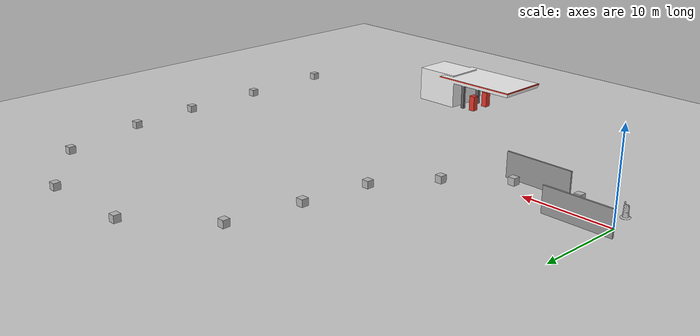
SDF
<sdf version="1.6">
 <world name="default">
  <light name="sun" type="directional">
   <pose>0 0 10 0 -0 0</pose>
   <diffuse>0.8 0.8 0.8 1</diffuse>
   <specular>0.1 0.1 0.1 1</specular>
   <attenuation>
    <range>1000</range>
    <constant>0.9</constant>
    <linear>0.01</linear>
    <quadratic>0.001</quadratic>
   </attenuation>
   <direction>-0.5 0.5 -1</direction>
  </light>
  <model name="ground_plane">
   <static>1</static>
   <link name="link">
    <collision name="collision">
     <geometry><plane><normal>0 0 1</normal><size>100 100</size></plane></geometry>
     <surface><friction><ode><mu>100</mu><mu2>50</mu2></ode></friction></surface>
    </collision>
    <visual name="visual">
     <cast_shadows>0</cast_shadows>
     <geometry><plane><normal>0 0 1</normal><size>100 100</size></plane></geometry>
     <material>
      <script><uri>file://media/materials/scripts/gazebo.material</uri><name>Gazebo/Grey</name></script>
     </material>
    </visual>
   </link>
  </model>
  <gravity>0 0 -9.8</gravity>
  <magnetic_field>6e-06 2.3e-05 -4.2e-05</magnetic_field>
  <atmosphere type="adiabatic"/>
  <physics name="default_physics" default="0" type="ode">
   <max_step_size>0.001</max_step_size>
   <real_time_factor>1</real_time_factor>
   <real_time_update_rate>1000</real_time_update_rate>
  </physics>
  <scene><ambient>0.4 0.4 0.4 1</ambient><background>0.7 0.7 0.7 1</background><shadows>1</shadows></scene>
  <spherical_coordinates>
   <surface_model>EARTH_WGS84</surface_model>
   <latitude_deg>0</latitude_deg>
   <longitude_deg>0</longitude_deg>
   <elevation>0</elevation>
   <heading_deg>0</heading_deg>
  </spherical_coordinates>
  <model name="Gas Station_0">
   <static>1</static>
   <link name="link">
    <collision name="collision">
     <geometry><mesh><uri>model://gas_station/meshes/gas_station.dae</uri><scale>1 1 1</scale></mesh></geometry>
    </collision>
    <visual name="visual">
     <geometry><mesh><uri>model://gas_station/meshes/gas_station.dae</uri><scale>1 1 1</scale></mesh></geometry>
     <material>
      <script>
       <uri>model://gas_station/materials/scripts</uri>
       <uri>model://gas_station/materials/textures</uri>
       <name>GasStation/Diffuse</name>
      </script>
      <shader type="normal_map_object_space"><normal_map>GasStation_Normal.png</normal_map></shader>
     </material>
    </visual>
   </link>
   <pose>31.5134 -18.4442 0 0 0 -3.12862</pose>
  </model>
  <model name="number1_1">
   <pose>5.70487 -3.11577 0.4 0 -0 0</pose>
   <static>1</static>
   <link name="link">
    <visual name="visual">
     <geometry><mesh><uri>model://number1/meshes/number.dae</uri><scale>1 1 1</scale></mesh></geometry>
     <material>
      <script>
       <uri>model://number1/materials/scripts</uri>
       <uri>model://number1/materials/textures</uri>
       <name>Number/One</name>
      </script>
     </material>
    </visual>
   </link>
  </model>
  <model name="number2_1">
   <pose>12.4569 -1.83771 0.4 0 -0 0</pose>
   <static>1</static>
   <link name="link">
    <visual name="visual">
     <geometry><mesh><uri>model://number1/meshes/number.dae</uri><scale>1 1 1</scale></mesh></geometry>
     <material>
      <script>
       <uri>model://number2/materials/scripts</uri>
       <uri>model://number2/materials/textures</uri>
       <name>Number/Two</name>
      </script>
     </material>
    </visual>
   </link>
  </model>
  <model name="number3_1">
   <pose>17.6742 3.03142 0.4 0 -0 0</pose>
   <static>1</static>
   <link name="link">
    <visual name="visual">
     <geometry><mesh><uri>model://number1/meshes/number.dae</uri><scale>1 1 1</scale></mesh></geometry>
     <material>
      <script>
       <uri>model://number3/materials/scripts</uri>
       <uri>model://number3/materials/textures</uri>
       <name>Number/Three</name>
      </script>
     </material>
    </visual>
   </link>
  </model>
  <model name="number4_1">
   <pose>21.6656 9.26273 0.4 0 -0 0</pose>
   <static>1</static>
   <link name="link">
    <visual name="visual">
     <geometry><mesh><uri>model://number1/meshes/number.dae</uri><scale>1 1 1</scale></mesh></geometry>
     <material>
      <script>
       <uri>model://number4/materials/scripts</uri>
       <uri>model://number4/materials/textures</uri>
       <name>Number/Four</name>
      </script>
     </material>
    </visual>
   </link>
  </model>
  <model name="number5_0">
   <pose>22.5855 16.9552 0.4 0 -0 0</pose>
   <static>1</static>
   <link name="link">
    <visual name="visual">
     <geometry><mesh><uri>model://number1/meshes/number.dae</uri><scale>1 1 1</scale></mesh></geometry>
     <material>
      <script>
       <uri>model://number5/materials/scripts</uri>
       <uri>model://number5/materials/textures</uri>
       <name>Number/Five</name>
      </script>
     </material>
    </visual>
   </link>
  </model>
  <model name="number6_0">
   <pose>23.8133 25.1674 0.4 0 -0 0</pose>
   <static>1</static>
   <link name="link">
    <visual name="visual">
     <geometry><mesh><uri>model://number1/meshes/number.dae</uri><scale>1 1 1</scale></mesh></geometry>
     <material>
      <script>
       <uri>model://number6/materials/scripts</uri>
       <uri>model://number6/materials/textures</uri>
       <name>Number/Six</name>
      </script>
     </material>
    </visual>
   </link>
  </model>
  <model name="number7_0">
   <pose>31.2881 31.79 0.4 0 -0 0</pose>
   <static>1</static>
   <link name="link">
    <visual name="visual">
     <geometry><mesh><uri>model://number1/meshes/number.dae</uri><scale>1 1 1</scale></mesh></geometry>
     <material>
      <script>
       <uri>model://number7/materials/scripts</uri>
       <uri>model://number7/materials/textures</uri>
       <name>Number/Seven</name>
      </script>
     </material>
    </visual>
   </link>
  </model>
  <model name="number8_0">
   <pose>41.7861 32.1611 0.4 0 -0 0</pose>
   <static>1</static>
   <link name="link">
    <visual name="visual">
     <geometry><mesh><uri>model://number1/meshes/number.dae</uri><scale>1 1 1</scale></mesh></geometry>
     <material>
      <script>
       <uri>model://number8/materials/scripts</uri>
       <uri>model://number8/materials/textures</uri>
       <name>Number/Eight</name>
      </script>
     </material>
    </visual>
   </link>
  </model>
  <model name="number9_0">
   <pose>49.8993 26.0779 0.4 0 -0 0</pose>
   <static>1</static>
   <link name="link">
    <visual name="visual">
     <geometry><mesh><uri>model://number1/meshes/number.dae</uri><scale>1 1 1</scale></mesh></geometry>
     <material>
      <script>
       <uri>model://number9/materials/scripts</uri>
       <uri>model://number9/materials/textures</uri>
       <name>Number/Nine</name>
      </script>
     </material>
    </visual>
   </link>
  </model>
  <model name="number1_2">
   <pose>52.2645 16.3203 0.4 0 -0 0</pose>
   <static>1</static>
   <link name="link">
    <visual name="visual">
     <geometry><mesh><uri>model://number1/meshes/number.dae</uri><scale>1 1 1</scale></mesh></geometry>
     <material>
      <script>
       <uri>model://number1/materials/scripts</uri>
       <uri>model://number1/materials/textures</uri>
       <name>Number/One</name>
      </script>
     </material>
    </visual>
   </link>
  </model>
  <model name="number2_2">
   <pose>52.9498 8.21537 0.4 0 -0 0</pose>
   <static>1</static>
   <link name="link">
    <visual name="visual">
     <geometry><mesh><uri>model://number1/meshes/number.dae</uri><scale>1 1 1</scale></mesh></geometry>
     <material>
      <script>
       <uri>model://number2/materials/scripts</uri>
       <uri>model://number2/materials/textures</uri>
       <name>Number/Two</name>
      </script>
     </material>
    </visual>
   </link>
  </model>
  <model name="number3_2">
   <pose>53.0907 -1.37401 0.4 0 -0 0</pose>
   <static>1</static>
   <link name="link">
    <visual name="visual">
     <geometry><mesh><uri>model://number1/meshes/number.dae</uri><scale>1 1 1</scale></mesh></geometry>
     <material>
      <script>
       <uri>model://number3/materials/scripts</uri>
       <uri>model://number3/materials/textures</uri>
       <name>Number/Three</name>
      </script>
     </material>
    </visual>
   </link>
  </model>
  <model name="number4_2">
   <pose>53.5251 -12.1099 0.4 0 -0 0</pose>
   <static>1</static>
   <link name="link">
    <visual name="visual">
     <geometry><mesh><uri>model://number1/meshes/number.dae</uri><scale>1 1 1</scale></mesh></geometry>
     <material>
      <script>
       <uri>model://number4/materials/scripts</uri>
       <uri>model://number4/materials/textures</uri>
       <name>Number/Four</name>
      </script>
     </material>
    </visual>
   </link>
  </model>
  <model name="Construction Barrel">
   <static>1</static>
   <link name="link">
    <inertial>
     <pose>0 0 0.4 0 -0 0</pose>
     <mass>500</mass>
     <inertia><ixx>51.2096</ixx><iyy>51.2096</iyy><izz>25</izz><ixy>0</ixy><ixz>0</ixz><iyz>0</iyz></inertia>
    </inertial>
    <collision name="collision">
     <geometry>
      <mesh><uri>model://construction_barrel/meshes/construction_barrel.dae</uri><scale>1 1 1</scale></mesh>
     </geometry>
    </collision>
    <visual name="visual">
     <geometry>
      <mesh><uri>model://construction_barrel/meshes/construction_barrel.dae</uri><scale>1 1 1</scale></mesh>
     </geometry>
    </visual>
   </link>
   <pose>0.676402 -2.98802 0 0 -0 0</pose>
  </model>
  <model name="grey_wall">
   <static>1</static>
   <link name="link">
    <pose>0 0 1.4 0 -0 0</pose>
    <collision name="collision"><geometry><box><size>7.5 0.2 2.8</size></box></geometry></collision>
    <visual name="visual">
     <cast_shadows>0</cast_shadows>
     <geometry><box><size>7.5 0.2 2.8</size></box></geometry>
     <material>
      <script>
       <uri>model://grey_wall/materials/scripts</uri>
       <uri>model://grey_wall/materials/textures</uri>
       <name>vrc/grey_wall</name>
      </script>
     </material>
    </visual>
   </link>
   <pose>2.75064 1.78404 0 0 -0 0</pose>
  </model>
  <model name="grey_wall_0">
   <static>1</static>
   <link name="link">
    <pose>0 0 1.4 0 -0 0</pose>
    <collision name="collision"><geometry><box><size>7.5 0.2 2.8</size></box></geometry></collision>
    <visual name="visual">
     <cast_shadows>0</cast_shadows>
     <geometry><box><size>7.5 0.2 2.8</size></box></geometry>
     <material>
      <script>
       <uri>model://grey_wall/materials/scripts</uri>
       <uri>model://grey_wall/materials/textures</uri>
       <name>vrc/grey_wall</name>
      </script>
     </material>
    </visual>
   </link>
   <pose>10.3784 -2.9038 0 0 -0 0</pose>
  </model>
 </world>
</sdf>
